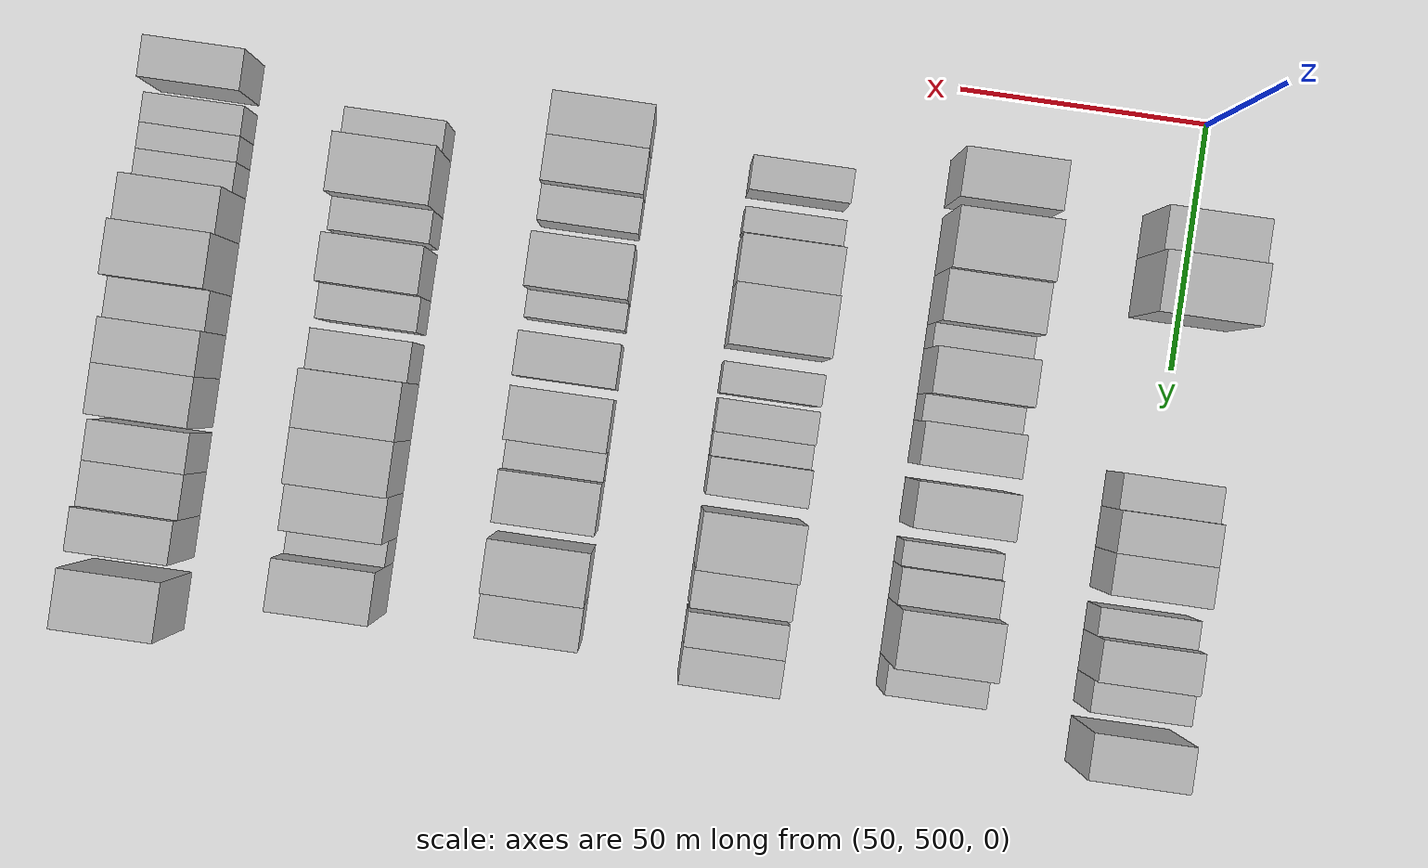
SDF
<sdf version="1.6">
 <world name="default">
  <model name="building_117">
   <static>1</static>
   <pose>50.0000 524.2540 0 0.000000 0.000000 0.000000</pose>
   <link name="link">
    <pose>0 0 10.50 0 0 0</pose>
    <collision name="collision"><geometry><box><size>20.0000 8.8274 21.0000</size></box></geometry></collision>
    <visual name="visual">
     <cast_shadows>0</cast_shadows>
     <geometry><box><size>20.0000 8.8274 21.0000</size></box></geometry>
     <material>
      <script>
       <uri>model://HANNAS_wall/materials/scripts</uri>
       <uri>model://HANNAS_wall/materials/textures</uri>
       <name>vrc/HANNAS_wall</name>
      </script>
     </material>
    </visual>
   </link>
  </model>
  <model name="building_118">
   <static>1</static>
   <pose>50.0000 534.6490 0 0.000000 0.000000 0.000000</pose>
   <link name="link">
    <pose>0 0 12.00 0 0 0</pose>
    <collision name="collision"><geometry><box><size>20.0000 11.9626 24.0000</size></box></geometry></collision>
    <visual name="visual">
     <cast_shadows>0</cast_shadows>
     <geometry><box><size>20.0000 11.9626 24.0000</size></box></geometry>
     <material>
      <script>
       <uri>model://HANNAS_wall/materials/scripts</uri>
       <uri>model://HANNAS_wall/materials/textures</uri>
       <name>vrc/HANNAS_wall</name>
      </script>
     </material>
    </visual>
   </link>
  </model>
  <model name="building_119">
   <static>1</static>
   <pose>50.0000 575.3990 0 0.000000 0.000000 0.000000</pose>
   <link name="link">
    <pose>0 0 7.50 0 0 0</pose>
    <collision name="collision"><geometry><box><size>20.0000 7.1791 15.0000</size></box></geometry></collision>
    <visual name="visual">
     <cast_shadows>0</cast_shadows>
     <geometry><box><size>20.0000 7.1791 15.0000</size></box></geometry>
     <material>
      <script>
       <uri>model://HANNAS_wall/materials/scripts</uri>
       <uri>model://HANNAS_wall/materials/textures</uri>
       <name>vrc/HANNAS_wall</name>
      </script>
     </material>
    </visual>
   </link>
  </model>
  <model name="building_120">
   <static>1</static>
   <pose>50.0000 583.1651 0 0.000000 0.000000 0.000000</pose>
   <link name="link">
    <pose>0 0 9.00 0 0 0</pose>
    <collision name="collision"><geometry><box><size>20.0000 8.3530 18.0000</size></box></geometry></collision>
    <visual name="visual">
     <cast_shadows>0</cast_shadows>
     <geometry><box><size>20.0000 8.3530 18.0000</size></box></geometry>
     <material>
      <script>
       <uri>model://HANNAS_wall/materials/scripts</uri>
       <uri>model://HANNAS_wall/materials/textures</uri>
       <name>vrc/HANNAS_wall</name>
      </script>
     </material>
    </visual>
   </link>
  </model>
  <model name="building_121">
   <static>1</static>
   <pose>50.0000 591.4020 0 0.000000 0.000000 0.000000</pose>
   <link name="link">
    <pose>0 0 9.00 0 0 0</pose>
    <collision name="collision"><geometry><box><size>20.0000 8.1209 18.0000</size></box></geometry></collision>
    <visual name="visual">
     <cast_shadows>0</cast_shadows>
     <geometry><box><size>20.0000 8.1209 18.0000</size></box></geometry>
     <material>
      <script>
       <uri>model://HANNAS_wall/materials/scripts</uri>
       <uri>model://HANNAS_wall/materials/textures</uri>
       <name>vrc/HANNAS_wall</name>
      </script>
     </material>
    </visual>
   </link>
  </model>
  <model name="building_122">
   <static>1</static>
   <pose>50.0000 601.3135 0 0.000000 0.000000 0.000000</pose>
   <link name="link">
    <pose>0 0 6.00 0 0 0</pose>
    <collision name="collision"><geometry><box><size>20.0000 5.7021 12.0000</size></box></geometry></collision>
    <visual name="visual">
     <cast_shadows>0</cast_shadows>
     <geometry><box><size>20.0000 5.7021 12.0000</size></box></geometry>
     <material>
      <script>
       <uri>model://HANNAS_wall/materials/scripts</uri>
       <uri>model://HANNAS_wall/materials/textures</uri>
       <name>vrc/HANNAS_wall</name>
      </script>
     </material>
    </visual>
   </link>
  </model>
  <model name="building_123">
   <static>1</static>
   <pose>50.0000 608.3023 0 0.000000 0.000000 0.000000</pose>
   <link name="link">
    <pose>0 0 9.00 0 0 0</pose>
    <collision name="collision"><geometry><box><size>20.0000 8.2755 18.0000</size></box></geometry></collision>
    <visual name="visual">
     <cast_shadows>0</cast_shadows>
     <geometry><box><size>20.0000 8.2755 18.0000</size></box></geometry>
     <material>
      <script>
       <uri>model://HANNAS_wall/materials/scripts</uri>
       <uri>model://HANNAS_wall/materials/textures</uri>
       <name>vrc/HANNAS_wall</name>
      </script>
     </material>
    </visual>
   </link>
  </model>
  <model name="building_124">
   <static>1</static>
   <pose>50.0000 615.6013 0 0.000000 0.000000 0.000000</pose>
   <link name="link">
    <pose>0 0 7.50 0 0 0</pose>
    <collision name="collision"><geometry><box><size>20.0000 6.3225 15.0000</size></box></geometry></collision>
    <visual name="visual">
     <cast_shadows>0</cast_shadows>
     <geometry><box><size>20.0000 6.3225 15.0000</size></box></geometry>
     <material>
      <script>
       <uri>model://HANNAS_wall/materials/scripts</uri>
       <uri>model://HANNAS_wall/materials/textures</uri>
       <name>vrc/HANNAS_wall</name>
      </script>
     </material>
    </visual>
   </link>
  </model>
  <model name="building_125">
   <static>1</static>
   <pose>50.0000 626.3510 0 0.000000 0.000000 0.000000</pose>
   <link name="link">
    <pose>0 0 10.50 0 0 0</pose>
    <collision name="collision"><geometry><box><size>20.0000 9.1770 21.0000</size></box></geometry></collision>
    <visual name="visual">
     <cast_shadows>0</cast_shadows>
     <geometry><box><size>20.0000 9.1770 21.0000</size></box></geometry>
     <material>
      <script>
       <uri>model://HANNAS_wall/materials/scripts</uri>
       <uri>model://HANNAS_wall/materials/textures</uri>
       <name>vrc/HANNAS_wall</name>
      </script>
     </material>
    </visual>
   </link>
  </model>
  <model name="building_249">
   <static>1</static>
   <pose>90.0000 519.1388 0 0.000000 0.000000 0.000000</pose>
   <link name="link">
    <pose>0 0 10.50 0 0 0</pose>
    <collision name="collision"><geometry><box><size>20.0000 9.7067 21.0000</size></box></geometry></collision>
    <visual name="visual">
     <cast_shadows>0</cast_shadows>
     <geometry><box><size>20.0000 9.7067 21.0000</size></box></geometry>
     <material>
      <script>
       <uri>model://HANNAS_wall/materials/scripts</uri>
       <uri>model://HANNAS_wall/materials/textures</uri>
       <name>vrc/HANNAS_wall</name>
      </script>
     </material>
    </visual>
   </link>
  </model>
  <model name="building_250">
   <static>1</static>
   <pose>90.0000 531.9416 0 0.000000 0.000000 0.000000</pose>
   <link name="link">
    <pose>0 0 12.00 0 0 0</pose>
    <collision name="collision"><geometry><box><size>20.0000 11.8989 24.0000</size></box></geometry></collision>
    <visual name="visual">
     <cast_shadows>0</cast_shadows>
     <geometry><box><size>20.0000 11.8989 24.0000</size></box></geometry>
     <material>
      <script>
       <uri>model://HANNAS_wall/materials/scripts</uri>
       <uri>model://HANNAS_wall/materials/textures</uri>
       <name>vrc/HANNAS_wall</name>
      </script>
     </material>
    </visual>
   </link>
  </model>
  <model name="building_251">
   <static>1</static>
   <pose>90.0000 542.8993 0 0.000000 0.000000 0.000000</pose>
   <link name="link">
    <pose>0 0 10.50 0 0 0</pose>
    <collision name="collision"><geometry><box><size>20.0000 10.0163 21.0000</size></box></geometry></collision>
    <visual name="visual">
     <cast_shadows>0</cast_shadows>
     <geometry><box><size>20.0000 10.0163 21.0000</size></box></geometry>
     <material>
      <script>
       <uri>model://HANNAS_wall/materials/scripts</uri>
       <uri>model://HANNAS_wall/materials/textures</uri>
       <name>vrc/HANNAS_wall</name>
      </script>
     </material>
    </visual>
   </link>
  </model>
  <model name="building_252">
   <static>1</static>
   <pose>90.0000 550.3566 0 0.000000 0.000000 0.000000</pose>
   <link name="link">
    <pose>0 0 6.00 0 0 0</pose>
    <collision name="collision"><geometry><box><size>20.0000 4.8984 12.0000</size></box></geometry></collision>
    <visual name="visual">
     <cast_shadows>0</cast_shadows>
     <geometry><box><size>20.0000 4.8984 12.0000</size></box></geometry>
     <material>
      <script>
       <uri>model://HANNAS_wall/materials/scripts</uri>
       <uri>model://HANNAS_wall/materials/textures</uri>
       <name>vrc/HANNAS_wall</name>
      </script>
     </material>
    </visual>
   </link>
  </model>
  <model name="building_253">
   <static>1</static>
   <pose>90.0000 557.3807 0 0.000000 0.000000 0.000000</pose>
   <link name="link">
    <pose>0 0 10.50 0 0 0</pose>
    <collision name="collision"><geometry><box><size>20.0000 9.1497 21.0000</size></box></geometry></collision>
    <visual name="visual">
     <cast_shadows>0</cast_shadows>
     <geometry><box><size>20.0000 9.1497 21.0000</size></box></geometry>
     <material>
      <script>
       <uri>model://HANNAS_wall/materials/scripts</uri>
       <uri>model://HANNAS_wall/materials/textures</uri>
       <name>vrc/HANNAS_wall</name>
      </script>
     </material>
    </visual>
   </link>
  </model>
  <model name="building_254">
   <static>1</static>
   <pose>90.0000 564.6424 0 0.000000 0.000000 0.000000</pose>
   <link name="link">
    <pose>0 0 6.00 0 0 0</pose>
    <collision name="collision"><geometry><box><size>20.0000 5.3737 12.0000</size></box></geometry></collision>
    <visual name="visual">
     <cast_shadows>0</cast_shadows>
     <geometry><box><size>20.0000 5.3737 12.0000</size></box></geometry>
     <material>
      <script>
       <uri>model://HANNAS_wall/materials/scripts</uri>
       <uri>model://HANNAS_wall/materials/textures</uri>
       <name>vrc/HANNAS_wall</name>
      </script>
     </material>
    </visual>
   </link>
  </model>
  <model name="building_255">
   <static>1</static>
   <pose>90.0000 571.6031 0 0.000000 0.000000 0.000000</pose>
   <link name="link">
    <pose>0 0 9.00 0 0 0</pose>
    <collision name="collision"><geometry><box><size>20.0000 8.5476 18.0000</size></box></geometry></collision>
    <visual name="visual">
     <cast_shadows>0</cast_shadows>
     <geometry><box><size>20.0000 8.5476 18.0000</size></box></geometry>
     <material>
      <script>
       <uri>model://HANNAS_wall/materials/scripts</uri>
       <uri>model://HANNAS_wall/materials/textures</uri>
       <name>vrc/HANNAS_wall</name>
      </script>
     </material>
    </visual>
   </link>
  </model>
  <model name="building_256">
   <static>1</static>
   <pose>90.0000 583.4052 0 0.000000 0.000000 0.000000</pose>
   <link name="link">
    <pose>0 0 10.50 0 0 0</pose>
    <collision name="collision"><geometry><box><size>20.0000 9.0567 21.0000</size></box></geometry></collision>
    <visual name="visual">
     <cast_shadows>0</cast_shadows>
     <geometry><box><size>20.0000 9.0567 21.0000</size></box></geometry>
     <material>
      <script>
       <uri>model://HANNAS_wall/materials/scripts</uri>
       <uri>model://HANNAS_wall/materials/textures</uri>
       <name>vrc/HANNAS_wall</name>
      </script>
     </material>
    </visual>
   </link>
  </model>
  <model name="building_257">
   <static>1</static>
   <pose>90.0000 593.4713 0 0.000000 0.000000 0.000000</pose>
   <link name="link">
    <pose>0 0 6.00 0 0 0</pose>
    <collision name="collision"><geometry><box><size>20.0000 5.0755 12.0000</size></box></geometry></collision>
    <visual name="visual">
     <cast_shadows>0</cast_shadows>
     <geometry><box><size>20.0000 5.0755 12.0000</size></box></geometry>
     <material>
      <script>
       <uri>model://HANNAS_wall/materials/scripts</uri>
       <uri>model://HANNAS_wall/materials/textures</uri>
       <name>vrc/HANNAS_wall</name>
      </script>
     </material>
    </visual>
   </link>
  </model>
  <model name="building_258">
   <static>1</static>
   <pose>90.0000 599.7234 0 0.000000 0.000000 0.000000</pose>
   <link name="link">
    <pose>0 0 7.50 0 0 0</pose>
    <collision name="collision"><geometry><box><size>20.0000 7.4287 15.0000</size></box></geometry></collision>
    <visual name="visual">
     <cast_shadows>0</cast_shadows>
     <geometry><box><size>20.0000 7.4287 15.0000</size></box></geometry>
     <material>
      <script>
       <uri>model://HANNAS_wall/materials/scripts</uri>
       <uri>model://HANNAS_wall/materials/textures</uri>
       <name>vrc/HANNAS_wall</name>
      </script>
     </material>
    </visual>
   </link>
  </model>
  <model name="building_259">
   <static>1</static>
   <pose>90.0000 609.1071 0 0.000000 0.000000 0.000000</pose>
   <link name="link">
    <pose>0 0 12.00 0 0 0</pose>
    <collision name="collision"><geometry><box><size>20.0000 11.3388 24.0000</size></box></geometry></collision>
    <visual name="visual">
     <cast_shadows>0</cast_shadows>
     <geometry><box><size>20.0000 11.3388 24.0000</size></box></geometry>
     <material>
      <script>
       <uri>model://HANNAS_wall/materials/scripts</uri>
       <uri>model://HANNAS_wall/materials/textures</uri>
       <name>vrc/HANNAS_wall</name>
      </script>
     </material>
    </visual>
   </link>
  </model>
  <model name="building_260">
   <static>1</static>
   <pose>90.0000 617.9566 0 0.000000 0.000000 0.000000</pose>
   <link name="link">
    <pose>0 0 7.50 0 0 0</pose>
    <collision name="collision"><geometry><box><size>20.0000 6.3602 15.0000</size></box></geometry></collision>
    <visual name="visual">
     <cast_shadows>0</cast_shadows>
     <geometry><box><size>20.0000 6.3602 15.0000</size></box></geometry>
     <material>
      <script>
       <uri>model://HANNAS_wall/materials/scripts</uri>
       <uri>model://HANNAS_wall/materials/textures</uri>
       <name>vrc/HANNAS_wall</name>
      </script>
     </material>
    </visual>
   </link>
  </model>
  <model name="building_386">
   <static>1</static>
   <pose>130.0000 524.2791 0 0.000000 0.000000 0.000000</pose>
   <link name="link">
    <pose>0 0 7.50 0 0 0</pose>
    <collision name="collision"><geometry><box><size>20.0000 6.7672 15.0000</size></box></geometry></collision>
    <visual name="visual">
     <cast_shadows>0</cast_shadows>
     <geometry><box><size>20.0000 6.7672 15.0000</size></box></geometry>
     <material>
      <script>
       <uri>model://HANNAS_wall/materials/scripts</uri>
       <uri>model://HANNAS_wall/materials/textures</uri>
       <name>vrc/HANNAS_wall</name>
      </script>
     </material>
    </visual>
   </link>
  </model>
  <model name="building_387">
   <static>1</static>
   <pose>130.0000 533.2115 0 0.000000 0.000000 0.000000</pose>
   <link name="link">
    <pose>0 0 6.00 0 0 0</pose>
    <collision name="collision"><geometry><box><size>20.0000 5.0977 12.0000</size></box></geometry></collision>
    <visual name="visual">
     <cast_shadows>0</cast_shadows>
     <geometry><box><size>20.0000 5.0977 12.0000</size></box></geometry>
     <material>
      <script>
       <uri>model://HANNAS_wall/materials/scripts</uri>
       <uri>model://HANNAS_wall/materials/textures</uri>
       <name>vrc/HANNAS_wall</name>
      </script>
     </material>
    </visual>
   </link>
  </model>
  <model name="building_388">
   <static>1</static>
   <pose>130.0000 541.5460 0 0.000000 0.000000 0.000000</pose>
   <link name="link">
    <pose>0 0 10.50 0 0 0</pose>
    <collision name="collision"><geometry><box><size>20.0000 9.5712 21.0000</size></box></geometry></collision>
    <visual name="visual">
     <cast_shadows>0</cast_shadows>
     <geometry><box><size>20.0000 9.5712 21.0000</size></box></geometry>
     <material>
      <script>
       <uri>model://HANNAS_wall/materials/scripts</uri>
       <uri>model://HANNAS_wall/materials/textures</uri>
       <name>vrc/HANNAS_wall</name>
      </script>
     </material>
    </visual>
   </link>
  </model>
  <model name="building_389">
   <static>1</static>
   <pose>130.0000 552.3262 0 0.000000 0.000000 0.000000</pose>
   <link name="link">
    <pose>0 0 12.00 0 0 0</pose>
    <collision name="collision"><geometry><box><size>20.0000 11.9891 24.0000</size></box></geometry></collision>
    <visual name="visual">
     <cast_shadows>0</cast_shadows>
     <geometry><box><size>20.0000 11.9891 24.0000</size></box></geometry>
     <material>
      <script>
       <uri>model://HANNAS_wall/materials/scripts</uri>
       <uri>model://HANNAS_wall/materials/textures</uri>
       <name>vrc/HANNAS_wall</name>
      </script>
     </material>
    </visual>
   </link>
  </model>
  <model name="building_390">
   <static>1</static>
   <pose>130.0000 564.4435 0 0.000000 0.000000 0.000000</pose>
   <link name="link">
    <pose>0 0 7.50 0 0 0</pose>
    <collision name="collision"><geometry><box><size>20.0000 6.2455 15.0000</size></box></geometry></collision>
    <visual name="visual">
     <cast_shadows>0</cast_shadows>
     <geometry><box><size>20.0000 6.2455 15.0000</size></box></geometry>
     <material>
      <script>
       <uri>model://HANNAS_wall/materials/scripts</uri>
       <uri>model://HANNAS_wall/materials/textures</uri>
       <name>vrc/HANNAS_wall</name>
      </script>
     </material>
    </visual>
   </link>
  </model>
  <model name="building_391">
   <static>1</static>
   <pose>130.0000 571.8605 0 0.000000 0.000000 0.000000</pose>
   <link name="link">
    <pose>0 0 7.50 0 0 0</pose>
    <collision name="collision"><geometry><box><size>20.0000 6.5886 15.0000</size></box></geometry></collision>
    <visual name="visual">
     <cast_shadows>0</cast_shadows>
     <geometry><box><size>20.0000 6.5886 15.0000</size></box></geometry>
     <material>
      <script>
       <uri>model://HANNAS_wall/materials/scripts</uri>
       <uri>model://HANNAS_wall/materials/textures</uri>
       <name>vrc/HANNAS_wall</name>
      </script>
     </material>
    </visual>
   </link>
  </model>
  <model name="building_392">
   <static>1</static>
   <pose>130.0000 577.5615 0 0.000000 0.000000 0.000000</pose>
   <link name="link">
    <pose>0 0 6.00 0 0 0</pose>
    <collision name="collision"><geometry><box><size>20.0000 4.8133 12.0000</size></box></geometry></collision>
    <visual name="visual">
     <cast_shadows>0</cast_shadows>
     <geometry><box><size>20.0000 4.8133 12.0000</size></box></geometry>
     <material>
      <script>
       <uri>model://HANNAS_wall/materials/scripts</uri>
       <uri>model://HANNAS_wall/materials/textures</uri>
       <name>vrc/HANNAS_wall</name>
      </script>
     </material>
    </visual>
   </link>
  </model>
  <model name="building_393">
   <static>1</static>
   <pose>130.0000 583.6629 0 0.000000 0.000000 0.000000</pose>
   <link name="link">
    <pose>0 0 9.00 0 0 0</pose>
    <collision name="collision"><geometry><box><size>20.0000 7.3895 18.0000</size></box></geometry></collision>
    <visual name="visual">
     <cast_shadows>0</cast_shadows>
     <geometry><box><size>20.0000 7.3895 18.0000</size></box></geometry>
     <material>
      <script>
       <uri>model://HANNAS_wall/materials/scripts</uri>
       <uri>model://HANNAS_wall/materials/textures</uri>
       <name>vrc/HANNAS_wall</name>
      </script>
     </material>
    </visual>
   </link>
  </model>
  <model name="building_394">
   <static>1</static>
   <pose>130.0000 595.9953 0 0.000000 0.000000 0.000000</pose>
   <link name="link">
    <pose>0 0 12.00 0 0 0</pose>
    <collision name="collision"><geometry><box><size>20.0000 11.2755 24.0000</size></box></geometry></collision>
    <visual name="visual">
     <cast_shadows>0</cast_shadows>
     <geometry><box><size>20.0000 11.2755 24.0000</size></box></geometry>
     <material>
      <script>
       <uri>model://HANNAS_wall/materials/scripts</uri>
       <uri>model://HANNAS_wall/materials/textures</uri>
       <name>vrc/HANNAS_wall</name>
      </script>
     </material>
    </visual>
   </link>
  </model>
  <model name="building_395">
   <static>1</static>
   <pose>130.0000 605.5484 0 0.000000 0.000000 0.000000</pose>
   <link name="link">
    <pose>0 0 9.00 0 0 0</pose>
    <collision name="collision"><geometry><box><size>20.0000 7.8306 18.0000</size></box></geometry></collision>
    <visual name="visual">
     <cast_shadows>0</cast_shadows>
     <geometry><box><size>20.0000 7.8306 18.0000</size></box></geometry>
     <material>
      <script>
       <uri>model://HANNAS_wall/materials/scripts</uri>
       <uri>model://HANNAS_wall/materials/textures</uri>
       <name>vrc/HANNAS_wall</name>
      </script>
     </material>
    </visual>
   </link>
  </model>
  <model name="building_396">
   <static>1</static>
   <pose>130.0000 613.9182 0 0.000000 0.000000 0.000000</pose>
   <link name="link">
    <pose>0 0 7.50 0 0 0</pose>
    <collision name="collision"><geometry><box><size>20.0000 6.9091 15.0000</size></box></geometry></collision>
    <visual name="visual">
     <cast_shadows>0</cast_shadows>
     <geometry><box><size>20.0000 6.9091 15.0000</size></box></geometry>
     <material>
      <script>
       <uri>model://HANNAS_wall/materials/scripts</uri>
       <uri>model://HANNAS_wall/materials/textures</uri>
       <name>vrc/HANNAS_wall</name>
      </script>
     </material>
    </visual>
   </link>
  </model>
  <model name="building_397">
   <static>1</static>
   <pose>130.0000 621.0833 0 0.000000 0.000000 0.000000</pose>
   <link name="link">
    <pose>0 0 7.50 0 0 0</pose>
    <collision name="collision"><geometry><box><size>20.0000 7.4210 15.0000</size></box></geometry></collision>
    <visual name="visual">
     <cast_shadows>0</cast_shadows>
     <geometry><box><size>20.0000 7.4210 15.0000</size></box></geometry>
     <material>
      <script>
       <uri>model://HANNAS_wall/materials/scripts</uri>
       <uri>model://HANNAS_wall/materials/textures</uri>
       <name>vrc/HANNAS_wall</name>
      </script>
     </material>
    </visual>
   </link>
  </model>
  <model name="building_529">
   <static>1</static>
   <pose>170.0000 519.2225 0 0.000000 0.000000 0.000000</pose>
   <link name="link">
    <pose>0 0 10.50 0 0 0</pose>
    <collision name="collision"><geometry><box><size>20.0000 8.4900 21.0000</size></box></geometry></collision>
    <visual name="visual">
     <cast_shadows>0</cast_shadows>
     <geometry><box><size>20.0000 8.4900 21.0000</size></box></geometry>
     <material>
      <script>
       <uri>model://HANNAS_wall/materials/scripts</uri>
       <uri>model://HANNAS_wall/materials/textures</uri>
       <name>vrc/HANNAS_wall</name>
      </script>
     </material>
    </visual>
   </link>
  </model>
  <model name="building_530">
   <static>1</static>
   <pose>170.0000 527.8979 0 0.000000 0.000000 0.000000</pose>
   <link name="link">
    <pose>0 0 10.50 0 0 0</pose>
    <collision name="collision"><geometry><box><size>20.0000 8.8609 21.0000</size></box></geometry></collision>
    <visual name="visual">
     <cast_shadows>0</cast_shadows>
     <geometry><box><size>20.0000 8.8609 21.0000</size></box></geometry>
     <material>
      <script>
       <uri>model://HANNAS_wall/materials/scripts</uri>
       <uri>model://HANNAS_wall/materials/textures</uri>
       <name>vrc/HANNAS_wall</name>
      </script>
     </material>
    </visual>
   </link>
  </model>
  <model name="building_531">
   <static>1</static>
   <pose>170.0000 535.8571 0 0.000000 0.000000 0.000000</pose>
   <link name="link">
    <pose>0 0 7.50 0 0 0</pose>
    <collision name="collision"><geometry><box><size>20.0000 7.0576 15.0000</size></box></geometry></collision>
    <visual name="visual">
     <cast_shadows>0</cast_shadows>
     <geometry><box><size>20.0000 7.0576 15.0000</size></box></geometry>
     <material>
      <script>
       <uri>model://HANNAS_wall/materials/scripts</uri>
       <uri>model://HANNAS_wall/materials/textures</uri>
       <name>vrc/HANNAS_wall</name>
      </script>
     </material>
    </visual>
   </link>
  </model>
  <model name="building_532">
   <static>1</static>
   <pose>170.0000 547.6260 0 0.000000 0.000000 0.000000</pose>
   <link name="link">
    <pose>0 0 12.00 0 0 0</pose>
    <collision name="collision"><geometry><box><size>20.0000 10.4801 24.0000</size></box></geometry></collision>
    <visual name="visual">
     <cast_shadows>0</cast_shadows>
     <geometry><box><size>20.0000 10.4801 24.0000</size></box></geometry>
     <material>
      <script>
       <uri>model://HANNAS_wall/materials/scripts</uri>
       <uri>model://HANNAS_wall/materials/textures</uri>
       <name>vrc/HANNAS_wall</name>
      </script>
     </material>
    </visual>
   </link>
  </model>
  <model name="building_533">
   <static>1</static>
   <pose>170.0000 555.5691 0 0.000000 0.000000 0.000000</pose>
   <link name="link">
    <pose>0 0 6.00 0 0 0</pose>
    <collision name="collision"><geometry><box><size>20.0000 5.4060 12.0000</size></box></geometry></collision>
    <visual name="visual">
     <cast_shadows>0</cast_shadows>
     <geometry><box><size>20.0000 5.4060 12.0000</size></box></geometry>
     <material>
      <script>
       <uri>model://HANNAS_wall/materials/scripts</uri>
       <uri>model://HANNAS_wall/materials/textures</uri>
       <name>vrc/HANNAS_wall</name>
      </script>
     </material>
    </visual>
   </link>
  </model>
  <model name="building_534">
   <static>1</static>
   <pose>170.0000 565.6069 0 0.000000 0.000000 0.000000</pose>
   <link name="link">
    <pose>0 0 10.50 0 0 0</pose>
    <collision name="collision"><geometry><box><size>20.0000 8.6696 21.0000</size></box></geometry></collision>
    <visual name="visual">
     <cast_shadows>0</cast_shadows>
     <geometry><box><size>20.0000 8.6696 21.0000</size></box></geometry>
     <material>
      <script>
       <uri>model://HANNAS_wall/materials/scripts</uri>
       <uri>model://HANNAS_wall/materials/textures</uri>
       <name>vrc/HANNAS_wall</name>
      </script>
     </material>
    </visual>
   </link>
  </model>
  <model name="building_535">
   <static>1</static>
   <pose>170.0000 577.1523 0 0.000000 0.000000 0.000000</pose>
   <link name="link">
    <pose>0 0 10.50 0 0 0</pose>
    <collision name="collision"><geometry><box><size>20.0000 10.4212 21.0000</size></box></geometry></collision>
    <visual name="visual">
     <cast_shadows>0</cast_shadows>
     <geometry><box><size>20.0000 10.4212 21.0000</size></box></geometry>
     <material>
      <script>
       <uri>model://HANNAS_wall/materials/scripts</uri>
       <uri>model://HANNAS_wall/materials/textures</uri>
       <name>vrc/HANNAS_wall</name>
      </script>
     </material>
    </visual>
   </link>
  </model>
  <model name="building_536">
   <static>1</static>
   <pose>170.0000 585.2877 0 0.000000 0.000000 0.000000</pose>
   <link name="link">
    <pose>0 0 6.00 0 0 0</pose>
    <collision name="collision"><geometry><box><size>20.0000 5.8496 12.0000</size></box></geometry></collision>
    <visual name="visual">
     <cast_shadows>0</cast_shadows>
     <geometry><box><size>20.0000 5.8496 12.0000</size></box></geometry>
     <material>
      <script>
       <uri>model://HANNAS_wall/materials/scripts</uri>
       <uri>model://HANNAS_wall/materials/textures</uri>
       <name>vrc/HANNAS_wall</name>
      </script>
     </material>
    </visual>
   </link>
  </model>
  <model name="building_537">
   <static>1</static>
   <pose>170.0000 593.2863 0 0.000000 0.000000 0.000000</pose>
   <link name="link">
    <pose>0 0 10.50 0 0 0</pose>
    <collision name="collision"><geometry><box><size>20.0000 10.1476 21.0000</size></box></geometry></collision>
    <visual name="visual">
     <cast_shadows>0</cast_shadows>
     <geometry><box><size>20.0000 10.1476 21.0000</size></box></geometry>
     <material>
      <script>
       <uri>model://HANNAS_wall/materials/scripts</uri>
       <uri>model://HANNAS_wall/materials/textures</uri>
       <name>vrc/HANNAS_wall</name>
      </script>
     </material>
    </visual>
   </link>
  </model>
  <model name="building_538">
   <static>1</static>
   <pose>170.0000 606.6050 0 0.000000 0.000000 0.000000</pose>
   <link name="link">
    <pose>0 0 12.00 0 0 0</pose>
    <collision name="collision"><geometry><box><size>20.0000 10.4899 24.0000</size></box></geometry></collision>
    <visual name="visual">
     <cast_shadows>0</cast_shadows>
     <geometry><box><size>20.0000 10.4899 24.0000</size></box></geometry>
     <material>
      <script>
       <uri>model://HANNAS_wall/materials/scripts</uri>
       <uri>model://HANNAS_wall/materials/textures</uri>
       <name>vrc/HANNAS_wall</name>
      </script>
     </material>
    </visual>
   </link>
  </model>
  <model name="building_539">
   <static>1</static>
   <pose>170.0000 616.3000 0 0.000000 0.000000 0.000000</pose>
   <link name="link">
    <pose>0 0 10.50 0 0 0</pose>
    <collision name="collision"><geometry><box><size>20.0000 8.8999 21.0000</size></box></geometry></collision>
    <visual name="visual">
     <cast_shadows>0</cast_shadows>
     <geometry><box><size>20.0000 8.8999 21.0000</size></box></geometry>
     <material>
      <script>
       <uri>model://HANNAS_wall/materials/scripts</uri>
       <uri>model://HANNAS_wall/materials/textures</uri>
       <name>vrc/HANNAS_wall</name>
      </script>
     </material>
    </visual>
   </link>
  </model>
  <model name="building_667">
   <static>1</static>
   <pose>210.0000 526.0295 0 0.000000 0.000000 0.000000</pose>
   <link name="link">
    <pose>0 0 7.50 0 0 0</pose>
    <collision name="collision"><geometry><box><size>20.0000 6.1402 15.0000</size></box></geometry></collision>
    <visual name="visual">
     <cast_shadows>0</cast_shadows>
     <geometry><box><size>20.0000 6.1402 15.0000</size></box></geometry>
     <material>
      <script>
       <uri>model://HANNAS_wall/materials/scripts</uri>
       <uri>model://HANNAS_wall/materials/textures</uri>
       <name>vrc/HANNAS_wall</name>
      </script>
     </material>
    </visual>
   </link>
  </model>
  <model name="building_668">
   <static>1</static>
   <pose>210.0000 534.8140 0 0.000000 0.000000 0.000000</pose>
   <link name="link">
    <pose>0 0 12.00 0 0 0</pose>
    <collision name="collision"><geometry><box><size>20.0000 11.4287 24.0000</size></box></geometry></collision>
    <visual name="visual">
     <cast_shadows>0</cast_shadows>
     <geometry><box><size>20.0000 11.4287 24.0000</size></box></geometry>
     <material>
      <script>
       <uri>model://HANNAS_wall/materials/scripts</uri>
       <uri>model://HANNAS_wall/materials/textures</uri>
       <name>vrc/HANNAS_wall</name>
      </script>
     </material>
    </visual>
   </link>
  </model>
  <model name="building_669">
   <static>1</static>
   <pose>210.0000 543.7906 0 0.000000 0.000000 0.000000</pose>
   <link name="link">
    <pose>0 0 7.50 0 0 0</pose>
    <collision name="collision"><geometry><box><size>20.0000 6.5246 15.0000</size></box></geometry></collision>
    <visual name="visual">
     <cast_shadows>0</cast_shadows>
     <geometry><box><size>20.0000 6.5246 15.0000</size></box></geometry>
     <material>
      <script>
       <uri>model://HANNAS_wall/materials/scripts</uri>
       <uri>model://HANNAS_wall/materials/textures</uri>
       <name>vrc/HANNAS_wall</name>
      </script>
     </material>
    </visual>
   </link>
  </model>
  <model name="building_670">
   <static>1</static>
   <pose>210.0000 552.7796 0 0.000000 0.000000 0.000000</pose>
   <link name="link">
    <pose>0 0 10.50 0 0 0</pose>
    <collision name="collision"><geometry><box><size>20.0000 9.4533 21.0000</size></box></geometry></collision>
    <visual name="visual">
     <cast_shadows>0</cast_shadows>
     <geometry><box><size>20.0000 9.4533 21.0000</size></box></geometry>
     <material>
      <script>
       <uri>model://HANNAS_wall/materials/scripts</uri>
       <uri>model://HANNAS_wall/materials/textures</uri>
       <name>vrc/HANNAS_wall</name>
      </script>
     </material>
    </visual>
   </link>
  </model>
  <model name="building_671">
   <static>1</static>
   <pose>210.0000 560.9850 0 0.000000 0.000000 0.000000</pose>
   <link name="link">
    <pose>0 0 7.50 0 0 0</pose>
    <collision name="collision"><geometry><box><size>20.0000 6.9575 15.0000</size></box></geometry></collision>
    <visual name="visual">
     <cast_shadows>0</cast_shadows>
     <geometry><box><size>20.0000 6.9575 15.0000</size></box></geometry>
     <material>
      <script>
       <uri>model://HANNAS_wall/materials/scripts</uri>
       <uri>model://HANNAS_wall/materials/textures</uri>
       <name>vrc/HANNAS_wall</name>
      </script>
     </material>
    </visual>
   </link>
  </model>
  <model name="building_672">
   <static>1</static>
   <pose>210.0000 570.4301 0 0.000000 0.000000 0.000000</pose>
   <link name="link">
    <pose>0 0 9.00 0 0 0</pose>
    <collision name="collision"><geometry><box><size>20.0000 7.9328 18.0000</size></box></geometry></collision>
    <visual name="visual">
     <cast_shadows>0</cast_shadows>
     <geometry><box><size>20.0000 7.9328 18.0000</size></box></geometry>
     <material>
      <script>
       <uri>model://HANNAS_wall/materials/scripts</uri>
       <uri>model://HANNAS_wall/materials/textures</uri>
       <name>vrc/HANNAS_wall</name>
      </script>
     </material>
    </visual>
   </link>
  </model>
  <model name="building_673">
   <static>1</static>
   <pose>210.0000 580.0904 0 0.000000 0.000000 0.000000</pose>
   <link name="link">
    <pose>0 0 12.00 0 0 0</pose>
    <collision name="collision"><geometry><box><size>20.0000 11.3877 24.0000</size></box></geometry></collision>
    <visual name="visual">
     <cast_shadows>0</cast_shadows>
     <geometry><box><size>20.0000 11.3877 24.0000</size></box></geometry>
     <material>
      <script>
       <uri>model://HANNAS_wall/materials/scripts</uri>
       <uri>model://HANNAS_wall/materials/textures</uri>
       <name>vrc/HANNAS_wall</name>
      </script>
     </material>
    </visual>
   </link>
  </model>
  <model name="building_674">
   <static>1</static>
   <pose>210.0000 591.1677 0 0.000000 0.000000 0.000000</pose>
   <link name="link">
    <pose>0 0 12.00 0 0 0</pose>
    <collision name="collision"><geometry><box><size>20.0000 10.7670 24.0000</size></box></geometry></collision>
    <visual name="visual">
     <cast_shadows>0</cast_shadows>
     <geometry><box><size>20.0000 10.7670 24.0000</size></box></geometry>
     <material>
      <script>
       <uri>model://HANNAS_wall/materials/scripts</uri>
       <uri>model://HANNAS_wall/materials/textures</uri>
       <name>vrc/HANNAS_wall</name>
      </script>
     </material>
    </visual>
   </link>
  </model>
  <model name="building_675">
   <static>1</static>
   <pose>210.0000 601.1064 0 0.000000 0.000000 0.000000</pose>
   <link name="link">
    <pose>0 0 10.50 0 0 0</pose>
    <collision name="collision"><geometry><box><size>20.0000 9.1104 21.0000</size></box></geometry></collision>
    <visual name="visual">
     <cast_shadows>0</cast_shadows>
     <geometry><box><size>20.0000 9.1104 21.0000</size></box></geometry>
     <material>
      <script>
       <uri>model://HANNAS_wall/materials/scripts</uri>
       <uri>model://HANNAS_wall/materials/textures</uri>
       <name>vrc/HANNAS_wall</name>
      </script>
     </material>
    </visual>
   </link>
  </model>
  <model name="building_676">
   <static>1</static>
   <pose>210.0000 608.2346 0 0.000000 0.000000 0.000000</pose>
   <link name="link">
    <pose>0 0 6.00 0 0 0</pose>
    <collision name="collision"><geometry><box><size>20.0000 5.1461 12.0000</size></box></geometry></collision>
    <visual name="visual">
     <cast_shadows>0</cast_shadows>
     <geometry><box><size>20.0000 5.1461 12.0000</size></box></geometry>
     <material>
      <script>
       <uri>model://HANNAS_wall/materials/scripts</uri>
       <uri>model://HANNAS_wall/materials/textures</uri>
       <name>vrc/HANNAS_wall</name>
      </script>
     </material>
    </visual>
   </link>
  </model>
  <model name="building_677">
   <static>1</static>
   <pose>210.0000 615.9274 0 0.000000 0.000000 0.000000</pose>
   <link name="link">
    <pose>0 0 12.00 0 0 0</pose>
    <collision name="collision"><geometry><box><size>20.0000 10.2395 24.0000</size></box></geometry></collision>
    <visual name="visual">
     <cast_shadows>0</cast_shadows>
     <geometry><box><size>20.0000 10.2395 24.0000</size></box></geometry>
     <material>
      <script>
       <uri>model://HANNAS_wall/materials/scripts</uri>
       <uri>model://HANNAS_wall/materials/textures</uri>
       <name>vrc/HANNAS_wall</name>
      </script>
     </material>
    </visual>
   </link>
  </model>
  <model name="building_807">
   <static>1</static>
   <pose>250.0000 519.2277 0 0.000000 0.000000 0.000000</pose>
   <link name="link">
    <pose>0 0 9.00 0 0 0</pose>
    <collision name="collision"><geometry><box><size>20.0000 8.1384 18.0000</size></box></geometry></collision>
    <visual name="visual">
     <cast_shadows>0</cast_shadows>
     <geometry><box><size>20.0000 8.1384 18.0000</size></box></geometry>
     <material>
      <script>
       <uri>model://HANNAS_wall/materials/scripts</uri>
       <uri>model://HANNAS_wall/materials/textures</uri>
       <name>vrc/HANNAS_wall</name>
      </script>
     </material>
    </visual>
   </link>
  </model>
  <model name="building_808">
   <static>1</static>
   <pose>250.0000 528.2711 0 0.000000 0.000000 0.000000</pose>
   <link name="link">
    <pose>0 0 6.00 0 0 0</pose>
    <collision name="collision"><geometry><box><size>20.0000 5.9484 12.0000</size></box></geometry></collision>
    <visual name="visual">
     <cast_shadows>0</cast_shadows>
     <geometry><box><size>20.0000 5.9484 12.0000</size></box></geometry>
     <material>
      <script>
       <uri>model://HANNAS_wall/materials/scripts</uri>
       <uri>model://HANNAS_wall/materials/textures</uri>
       <name>vrc/HANNAS_wall</name>
      </script>
     </material>
    </visual>
   </link>
  </model>
  <model name="building_809">
   <static>1</static>
   <pose>250.0000 533.8450 0 0.000000 0.000000 0.000000</pose>
   <link name="link">
    <pose>0 0 6.00 0 0 0</pose>
    <collision name="collision"><geometry><box><size>20.0000 5.1995 12.0000</size></box></geometry></collision>
    <visual name="visual">
     <cast_shadows>0</cast_shadows>
     <geometry><box><size>20.0000 5.1995 12.0000</size></box></geometry>
     <material>
      <script>
       <uri>model://HANNAS_wall/materials/scripts</uri>
       <uri>model://HANNAS_wall/materials/textures</uri>
       <name>vrc/HANNAS_wall</name>
      </script>
     </material>
    </visual>
   </link>
  </model>
  <model name="building_810">
   <static>1</static>
   <pose>250.0000 539.3814 0 0.000000 0.000000 0.000000</pose>
   <link name="link">
    <pose>0 0 6.00 0 0 0</pose>
    <collision name="collision"><geometry><box><size>20.0000 5.8734 12.0000</size></box></geometry></collision>
    <visual name="visual">
     <cast_shadows>0</cast_shadows>
     <geometry><box><size>20.0000 5.8734 12.0000</size></box></geometry>
     <material>
      <script>
       <uri>model://HANNAS_wall/materials/scripts</uri>
       <uri>model://HANNAS_wall/materials/textures</uri>
       <name>vrc/HANNAS_wall</name>
      </script>
     </material>
    </visual>
   </link>
  </model>
  <model name="building_811">
   <static>1</static>
   <pose>250.0000 546.9082 0 0.000000 0.000000 0.000000</pose>
   <link name="link">
    <pose>0 0 10.50 0 0 0</pose>
    <collision name="collision"><geometry><box><size>20.0000 9.1802 21.0000</size></box></geometry></collision>
    <visual name="visual">
     <cast_shadows>0</cast_shadows>
     <geometry><box><size>20.0000 9.1802 21.0000</size></box></geometry>
     <material>
      <script>
       <uri>model://HANNAS_wall/materials/scripts</uri>
       <uri>model://HANNAS_wall/materials/textures</uri>
       <name>vrc/HANNAS_wall</name>
      </script>
     </material>
    </visual>
   </link>
  </model>
  <model name="building_812">
   <static>1</static>
   <pose>250.0000 556.8446 0 0.000000 0.000000 0.000000</pose>
   <link name="link">
    <pose>0 0 12.00 0 0 0</pose>
    <collision name="collision"><geometry><box><size>20.0000 10.6925 24.0000</size></box></geometry></collision>
    <visual name="visual">
     <cast_shadows>0</cast_shadows>
     <geometry><box><size>20.0000 10.6925 24.0000</size></box></geometry>
     <material>
      <script>
       <uri>model://HANNAS_wall/materials/scripts</uri>
       <uri>model://HANNAS_wall/materials/textures</uri>
       <name>vrc/HANNAS_wall</name>
      </script>
     </material>
    </visual>
   </link>
  </model>
  <model name="building_813">
   <static>1</static>
   <pose>250.0000 566.1835 0 0.000000 0.000000 0.000000</pose>
   <link name="link">
    <pose>0 0 9.00 0 0 0</pose>
    <collision name="collision"><geometry><box><size>20.0000 7.9854 18.0000</size></box></geometry></collision>
    <visual name="visual">
     <cast_shadows>0</cast_shadows>
     <geometry><box><size>20.0000 7.9854 18.0000</size></box></geometry>
     <material>
      <script>
       <uri>model://HANNAS_wall/materials/scripts</uri>
       <uri>model://HANNAS_wall/materials/textures</uri>
       <name>vrc/HANNAS_wall</name>
      </script>
     </material>
    </visual>
   </link>
  </model>
  <model name="building_814">
   <static>1</static>
   <pose>250.0000 574.5962 0 0.000000 0.000000 0.000000</pose>
   <link name="link">
    <pose>0 0 10.50 0 0 0</pose>
    <collision name="collision"><geometry><box><size>20.0000 8.8400 21.0000</size></box></geometry></collision>
    <visual name="visual">
     <cast_shadows>0</cast_shadows>
     <geometry><box><size>20.0000 8.8400 21.0000</size></box></geometry>
     <material>
      <script>
       <uri>model://HANNAS_wall/materials/scripts</uri>
       <uri>model://HANNAS_wall/materials/textures</uri>
       <name>vrc/HANNAS_wall</name>
      </script>
     </material>
    </visual>
   </link>
  </model>
  <model name="building_815">
   <static>1</static>
   <pose>250.0000 583.9824 0 0.000000 0.000000 0.000000</pose>
   <link name="link">
    <pose>0 0 10.50 0 0 0</pose>
    <collision name="collision"><geometry><box><size>20.0000 9.9323 21.0000</size></box></geometry></collision>
    <visual name="visual">
     <cast_shadows>0</cast_shadows>
     <geometry><box><size>20.0000 9.9323 21.0000</size></box></geometry>
     <material>
      <script>
       <uri>model://HANNAS_wall/materials/scripts</uri>
       <uri>model://HANNAS_wall/materials/textures</uri>
       <name>vrc/HANNAS_wall</name>
      </script>
     </material>
    </visual>
   </link>
  </model>
  <model name="building_816">
   <static>1</static>
   <pose>250.0000 593.9580 0 0.000000 0.000000 0.000000</pose>
   <link name="link">
    <pose>0 0 9.00 0 0 0</pose>
    <collision name="collision"><geometry><box><size>20.0000 8.0188 18.0000</size></box></geometry></collision>
    <visual name="visual">
     <cast_shadows>0</cast_shadows>
     <geometry><box><size>20.0000 8.0188 18.0000</size></box></geometry>
     <material>
      <script>
       <uri>model://HANNAS_wall/materials/scripts</uri>
       <uri>model://HANNAS_wall/materials/textures</uri>
       <name>vrc/HANNAS_wall</name>
      </script>
     </material>
    </visual>
   </link>
  </model>
  <model name="building_817">
   <static>1</static>
   <pose>250.0000 602.4400 0 0.000000 0.000000 0.000000</pose>
   <link name="link">
    <pose>0 0 9.00 0 0 0</pose>
    <collision name="collision"><geometry><box><size>20.0000 8.9452 18.0000</size></box></geometry></collision>
    <visual name="visual">
     <cast_shadows>0</cast_shadows>
     <geometry><box><size>20.0000 8.9452 18.0000</size></box></geometry>
     <material>
      <script>
       <uri>model://HANNAS_wall/materials/scripts</uri>
       <uri>model://HANNAS_wall/materials/textures</uri>
       <name>vrc/HANNAS_wall</name>
      </script>
     </material>
    </visual>
   </link>
  </model>
  <model name="building_818">
   <static>1</static>
   <pose>250.0000 611.1757 0 0.000000 0.000000 0.000000</pose>
   <link name="link">
    <pose>0 0 10.50 0 0 0</pose>
    <collision name="collision"><geometry><box><size>20.0000 8.5263 21.0000</size></box></geometry></collision>
    <visual name="visual">
     <cast_shadows>0</cast_shadows>
     <geometry><box><size>20.0000 8.5263 21.0000</size></box></geometry>
     <material>
      <script>
       <uri>model://HANNAS_wall/materials/scripts</uri>
       <uri>model://HANNAS_wall/materials/textures</uri>
       <name>vrc/HANNAS_wall</name>
      </script>
     </material>
    </visual>
   </link>
  </model>
  <model name="building_819">
   <static>1</static>
   <pose>250.0000 624.2806 0 0.000000 0.000000 0.000000</pose>
   <link name="link">
    <pose>0 0 12.00 0 0 0</pose>
    <collision name="collision"><geometry><box><size>20.0000 11.6835 24.0000</size></box></geometry></collision>
    <visual name="visual">
     <cast_shadows>0</cast_shadows>
     <geometry><box><size>20.0000 11.6835 24.0000</size></box></geometry>
     <material>
      <script>
       <uri>model://HANNAS_wall/materials/scripts</uri>
       <uri>model://HANNAS_wall/materials/textures</uri>
       <name>vrc/HANNAS_wall</name>
      </script>
     </material>
    </visual>
   </link>
  </model>
 </world>
</sdf>
